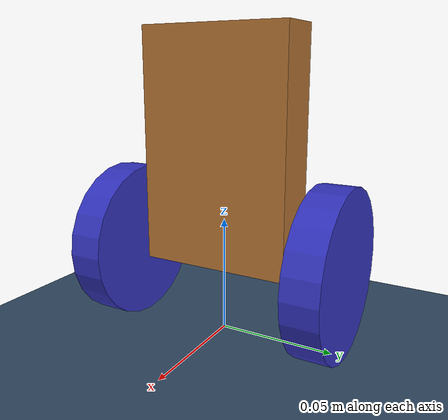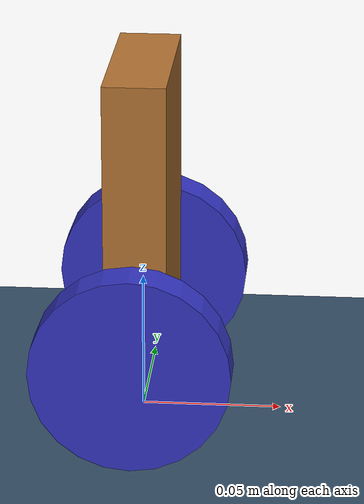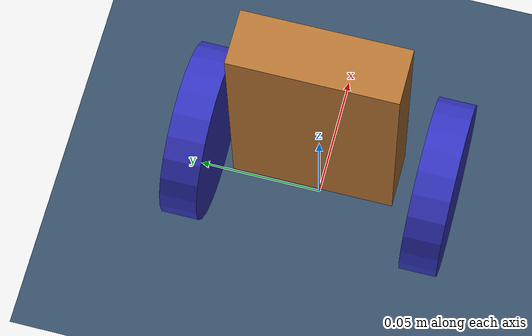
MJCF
<mujoco model="two_wheel_balancer">
  <compiler angle="radian"/>
  <option gravity="0 0 -9.81" timestep="0.002" integrator="RK4"/>

  <default>
    <joint damping="0.01" armature="0.01"/>
    <geom condim="3" friction="0.8 0.1 0.1"/>
  </default>

  <asset>
    <texture name="grid" type="2d" builtin="checker"
             rgb1=".15 .25 .35" rgb2=".25 .35 .45"
             width="300" height="300"/>
    <material name="grid" texture="grid" texrepeat="4 4" texuniform="true"/>
  </asset>

  <worldbody>
    <light pos="0 0 1.5" dir="0 0 -1" diffuse="0.9 0.9 0.9"/>
    <light pos="1 -1 1" dir="-1 1 -1" diffuse="0.3 0.3 0.3"/>
    <geom name="floor" size="0 0 0.05" type="plane" material="grid" condim="3"/>

    <body name="chassis" pos="0 0 0.081">
      <freejoint name="chassis_free"/>
      <inertial pos="0 0 -0.0147" mass="0.132"
                diaginertia="1.57e-4 1.15e-4 5.18e-5"/>
      <geom name="chassis_box" type="box" size="0.011 0.0325 0.050"
            rgba="0.70 0.45 0.20 1"/>
      <!-- IMU site at chassis geometric center -->
      <site name="imu_site" pos="0 0 0" size="0.004"/>

      <body name="left_wheel" pos="0 -0.0485 -0.046">
        <!-- BLDC outrunner + ball bearings: near-zero passive friction.
             damping ~0.1 mNm·s/rad, armature = rotor inertia ~0.1 g·cm² -->
        <joint name="left_wheel_joint" type="hinge" axis="0 1 0"
               damping="0.0001" armature="0.0001"/>
        <!-- euler="1.5708 0 0" rotates cylinder axis from Z to Y, matching the hinge axis -->
        <geom name="left_wheel_geom" type="cylinder" size="0.035 0.0075"
              euler="1.5708 0 0"
              mass="0.020" rgba="0.20 0.20 0.75 1"
              friction="1.2 0.01 0.002"/>
      </body>

      <!--
        Right wheel: offset +y (right side), axle 4mm above tin bottom.
        Center at y=+48.5mm.
      -->
      <body name="right_wheel" pos="0 0.0485 -0.046">
        <joint name="right_wheel_joint" type="hinge" axis="0 1 0"
               damping="0.0001" armature="0.0001"/>
        <!-- euler="1.5708 0 0" rotates cylinder axis from Z to Y, matching the hinge axis -->
        <geom name="right_wheel_geom" type="cylinder" size="0.035 0.0075"
              euler="1.5708 0 0"
              mass="0.020" rgba="0.20 0.20 0.75 1"
              friction="1.2 0.01 0.002"/>
      </body>
    </body>
  </worldbody>

  <actuator>
    <velocity name="left_motor"  joint="left_wheel_joint"
              kv="0.05" forcerange="-0.3 0.3"
              ctrllimited="true" ctrlrange="-50 50"/>
    <velocity name="right_motor" joint="right_wheel_joint"
              kv="0.05" forcerange="-0.3 0.3"
              ctrllimited="true" ctrlrange="-50 50"/>
  </actuator>

  <sensor>
    <!-- Body-frame gyro at the IMU site -->
    <gyro      name="imu_gyro"        site="imu_site"  noise="0.01"/>
    <!-- Chassis orientation as a quaternion [w, x, y, z] -->
    <framequat name="chassis_quat"    objtype="body" objname="chassis"/>
    <!-- Wheel angular velocities -->
    <jointvel  name="left_wheel_vel"  joint="left_wheel_joint"/>
    <jointvel  name="right_wheel_vel" joint="right_wheel_joint"/>
  </sensor>

</mujoco>
